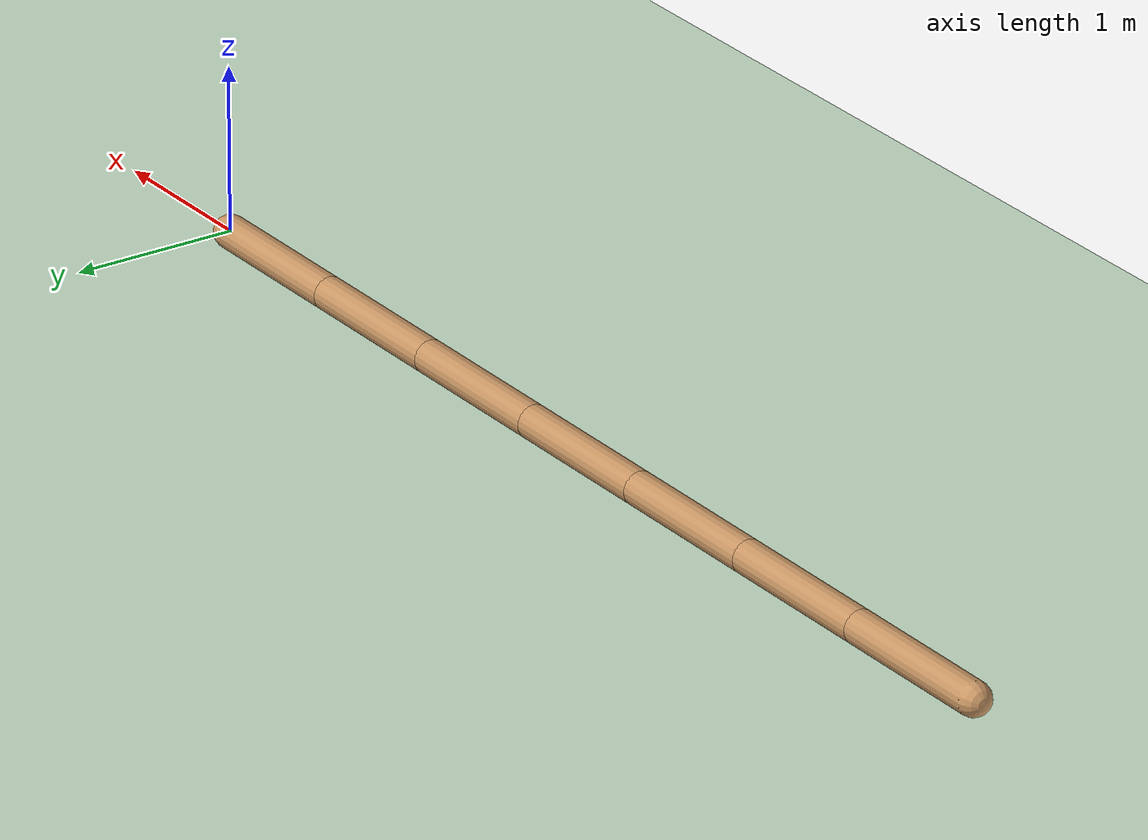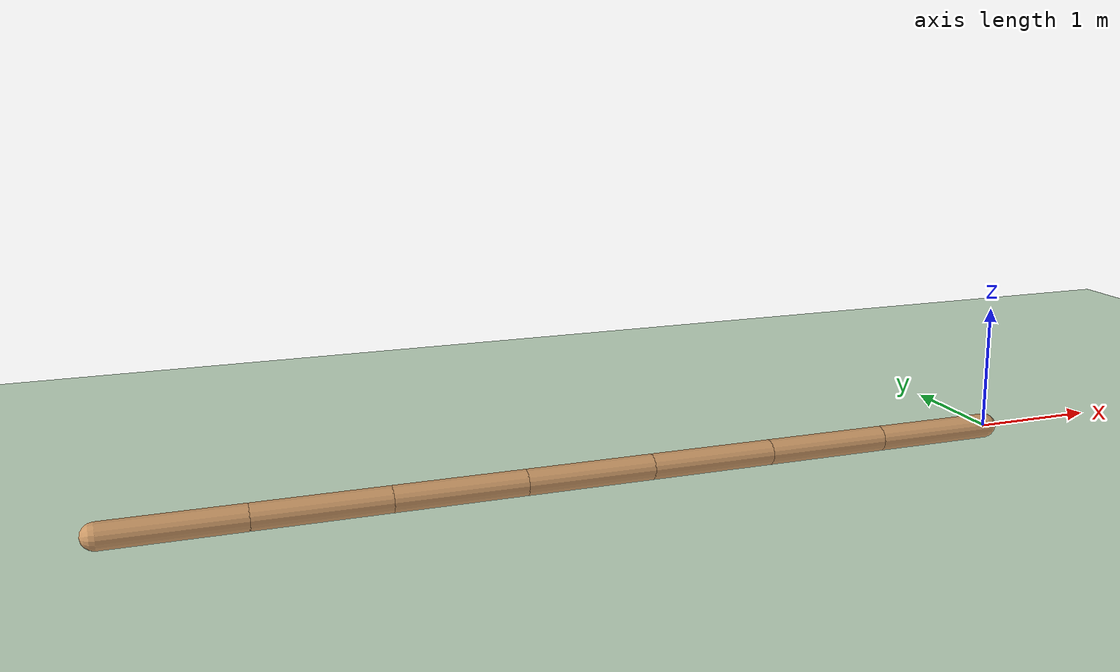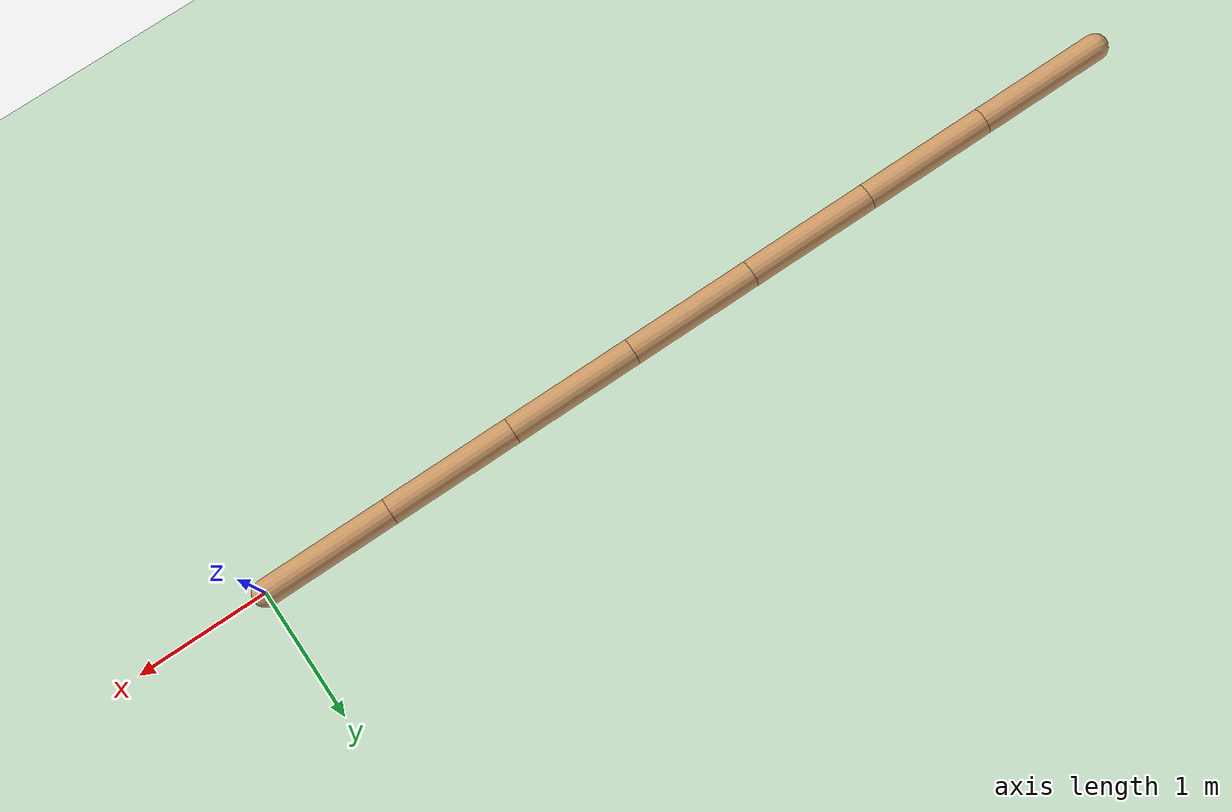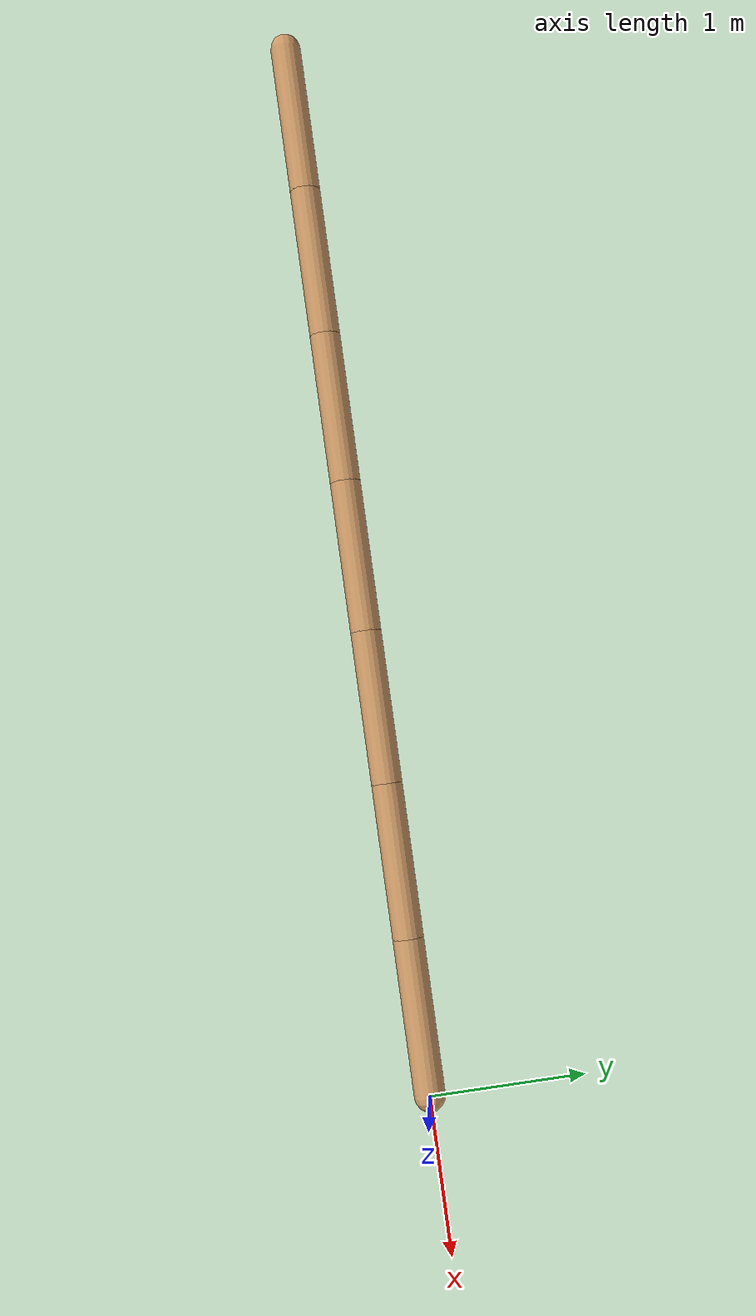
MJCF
<mujoco model="swimmer">
  <compiler angle="degree" coordinate="local" inertiafromgeom="true"/>
  <option collision="predefined" density="4000" integrator="RK4" timestep="0.01" viscosity="0.1"/>
  <default>
    <geom conaffinity="1" condim="1" contype="1" material="geom" rgba="0.8 0.6 .4 1"/>
    <joint armature="0.1"/>
  </default>
  <asset>
    <texture builtin="gradient" height="100" rgb1="1 1 1" rgb2="0 0 0" type="skybox" width="100"/>
    <texture builtin="flat" height="1278" mark="cross" markrgb="1 1 1" name="texgeom" random="0.01" rgb1="0.8 0.6 0.4" rgb2="0.8 0.6 0.4" type="cube" width="127"/>
    <texture builtin="checker" height="100" name="texplane" rgb1="0 0 0" rgb2="0.8 0.8 0.8" type="2d" width="100"/>
    <material name="MatPlane" reflectance="0.5" shininess="1" specular="1" texrepeat="30 30" texture="texplane"/>
    <material name="geom" texture="texgeom" texuniform="true"/>
  </asset>

  <worldbody>
    <light cutoff="100" diffuse="1 1 1" dir="-0 0 -1.3" directional="true" exponent="1" pos="0 0 1.3" specular=".1 .1 .1"/>
    <geom conaffinity="1" condim="3" material="MatPlane" name="floor" pos="0 0 -0.1" rgba="0.8 0.9 0.8 1" size="40 40 0.1" type="plane"/>
    <body name="podBody_1" pos="0 0 0">
      <camera name="track" mode="trackcom" pos="-3.8 -10 10" xyaxes="1 0 0 0 1 1"/>
      <geom name="pod_1" density="1000" fromto="0 0 0 -1 0 0" size="0.1" type="capsule"/>
      <joint axis="1 0 0" name="slider1" pos="0 0 0" type="slide"/>
      <joint axis="0 1 0" name="slider2" pos="0 0 0" type="slide"/>
      <joint axis="0 0 1" name="rot_1" pos="-1.5 0 0" type="hinge"/>
      <site name="tip" pos="0 0 0" size="0.02 0.02"/>
      <body name="podBody_2" pos="-1 0 0">
        <geom name="pod_2" density="1000" fromto="0 0 0 -1 0 0" size="0.1" type="capsule"/>
        <joint axis="0 0 1" limited="true" name="rot_2" pos="0 0 0" range="-100 100" type="hinge"/>

        <body name="podBody_3" pos="-1 0 0">
          <geom name="pod_3" density="1000" fromto="0 0 0 -1 0 0" size="0.1" type="capsule"/>
          <joint axis="0 0 1" limited="true" name="rot_3" pos="0 0 0" range="-100 100" type="hinge"/>

          <body name="podBody_4" pos="-1 0 0">
            <geom name="pod_4" density="1000" fromto="0 0 0 -1 0 0" size="0.1" type="capsule"/>
            <joint axis="0 0 1" limited="true" name="rot_4" pos="0 0 0" range="-100 100" type="hinge"/>

            <body name="podBody_5" pos="-1 0 0">
              <geom name="pod_5" density="1000" fromto="0 0 0 -1 0 0" size="0.1" type="capsule"/>
              <joint axis="0 0 1" limited="true" name="rot_5" pos="0 0 0" range="-100 100" type="hinge"/>

              <body name="podBody_6" pos="-1 0 0">
                <geom name="pod_6" density="1000" fromto="0 0 0 -1 0 0" size="0.1" type="capsule"/>
                <joint axis="0 0 1" limited="true" name="rot_6" pos="0 0 0" range="-100 100" type="hinge"/>

                <body name="podBody_7" pos="-1 0 0">
                  <geom name="pod_7" density="1000" fromto="0 0 0 -1 0 0" size="0.1" type="capsule"/>
                  <joint axis="0 0 1" limited="true" name="rot_7" pos="0 0 0" range="-100 100" type="hinge"/>

                </body>
              </body>
            </body>
          </body>
        </body>

      </body>
    </body>
  </worldbody>
  <actuator>
    <motor ctrllimited="true" ctrlrange="-1 1" gear="150.0" joint="rot_2"/>
    <motor ctrllimited="true" ctrlrange="-1 1" gear="150.0" joint="rot_3"/>
    <motor ctrllimited="true" ctrlrange="-1 1" gear="150.0" joint="rot_4"/>
    <motor ctrllimited="true" ctrlrange="-1 1" gear="150.0" joint="rot_5"/>
    <motor ctrllimited="true" ctrlrange="-1 1" gear="150.0" joint="rot_6"/>
    <motor ctrllimited="true" ctrlrange="-1 1" gear="150.0" joint="rot_7"/>
  </actuator>

</mujoco>
